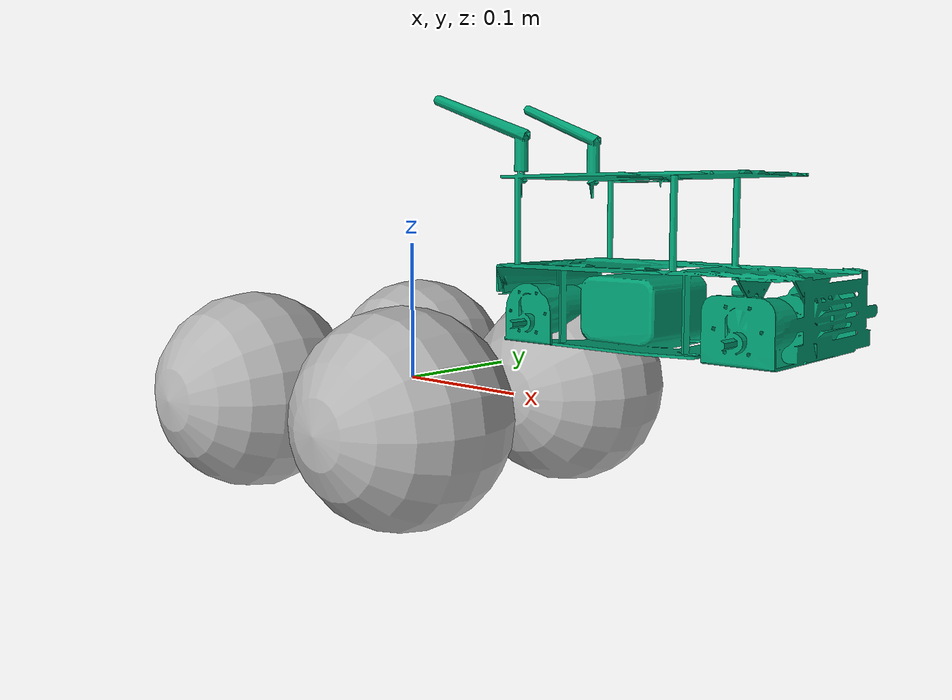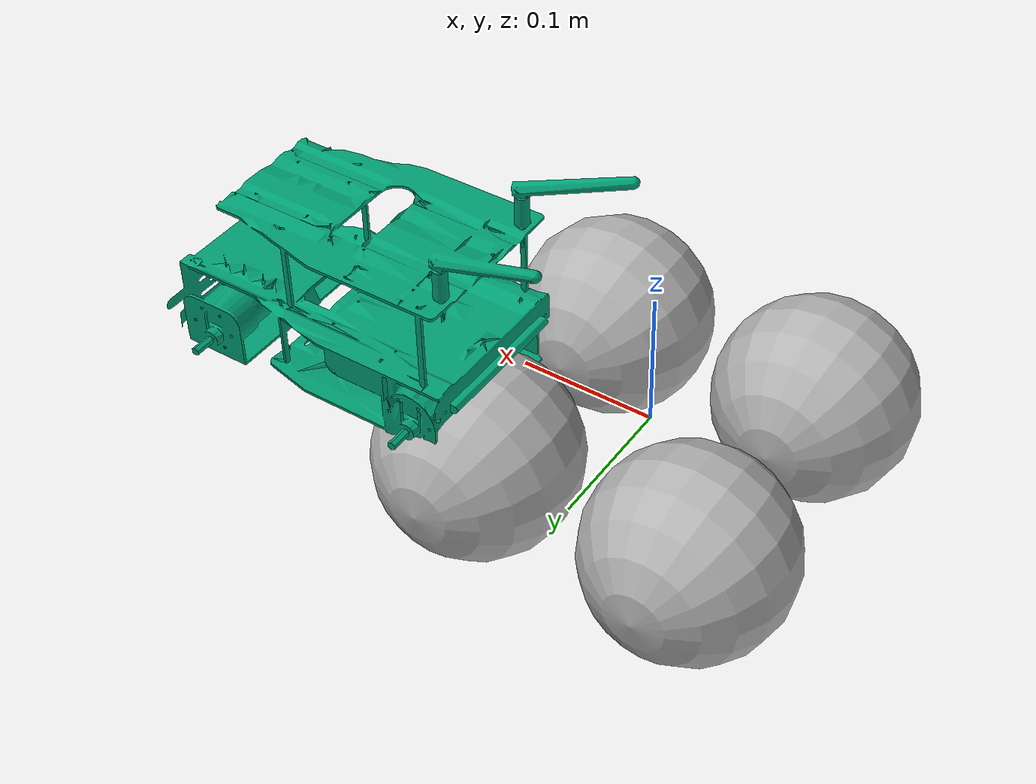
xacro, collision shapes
<?xml version="1.0"?>

<robot name="omnimate" xmlns:xacro="http://ros.org/wiki/xacro">

    <xacro:include filename="$(find omnimate_description)/urdf/omnimate_drive.urdf.xacro" />

    <!-- Links -->

    <link name="base_footprint" />

    <link name="imu_link" />

    <link name="base_link">
        <inertial>
            <origin xyz="0.00498197982182523 5.70233829969297E-05 -0.0121008098068578" rpy="0 0 0" />
            <mass value="0.486218814966626" />
            <inertia
                ixx="0.00196277727666921"
                ixy="2.50447049446755E-07"
                ixz="0.000140534767811098"
                iyy="0.00457256033711368"
                iyz="2.68618064993882E-07"
                izz="0.00493927269870476" />
        </inertial>
        <visual>
            <origin xyz="0 0 0" rpy="0 0 0" />
            <geometry>
                <mesh filename="package://omnimate_description/meshes/base_link_X3.STL" />
            </geometry>
        </visual>
        <collision>
            <origin xyz="0 0 0" rpy="0 0 0" />
            <geometry>
                <mesh filename="package://omnimate_description/meshes/base_link_X3.STL" />
            </geometry>
        </collision>
    </link>

    <link name="front_right_wheel">
        <inertial>
            <origin xyz="1.9051E-06 -2.3183E-07 -0.00064079" rpy="0 0 0" />
            <mass value="0.051532" />
            <inertia ixx="1.4595E-05" ixy="-4.3975E-10" ixz="4.415E-10"
                iyy="1.4594E-05" iyz="-1.7476E-09" izz="2.4264E-05" />
        </inertial>
        <visual>
            <origin xyz="0 0 0" rpy="0 0 0" />
            <geometry>
                <mesh
                    filename="package://omnimate_description/meshes/wheels/front_right_wheel_X3.STL" />
            </geometry>
            <material name="">
                <color rgba="0.7 0.7 0.7 1" />
            </material>
        </visual>
        <collision>
            <origin xyz="0 0 0" rpy="0 0 0" />
            <geometry>
                <sphere radius="0.07162"/>
            </geometry>
        </collision>
    </link>

    <link name="front_left_wheel">
        <inertial>
            <origin xyz="2.3728E-06 -9.4228E-07 0.00064068" rpy="0 0 0" />
            <mass value="0.051543" />
            <inertia ixx="1.4597E-05" ixy="-4.7945E-10" ixz="-2.4786E-10"
                iyy="1.4598E-05" iyz="1.7972E-09" izz="2.4267E-05" />
        </inertial>
        <visual>
            <origin xyz="0 0 0" rpy="0 0 0" />
            <geometry>
                <mesh
                    filename="package://omnimate_description/meshes/wheels/front_left_wheel_X3.STL" />
            </geometry>
            <material name="">
                <color rgba="0.7 0.7 0.7 1" />
            </material>
        </visual>
        <collision>
            <origin xyz="0 0 0" rpy="0 0 0" />
            <geometry>
                <sphere radius="0.07162"/>
            </geometry>
        </collision>
    </link>

    <link name="back_right_wheel">
        <inertial>
            <origin xyz="-1.75924169923403E-06 1.28388821071107E-06 -0.000590549296238266"
                rpy="0 0 0" />
            <mass value="0.051540174053366" />
            <inertia ixx="1.45974152250002E-05" ixy="1.94850559178397E-10"
                ixz="-1.61846387282284E-09"
                iyy="1.4596501955693E-05" iyz="-6.27904057423818E-10" izz="2.42663091380451E-05" />
        </inertial>
        <visual>
            <origin xyz="0 0 0" rpy="0 0 0" />
            <geometry>
                <mesh
                    filename="package://omnimate_description/meshes/wheels/back_right_wheel_X3.STL" />
            </geometry>
            <material name="">
                <color rgba="0.7 0.7 0.7 1" />
            </material>
        </visual>
        <collision>
            <origin xyz="0 0 0" rpy="0 0 0" />
            <geometry>
                <sphere radius="0.07162"/>
            </geometry>
        </collision>
    </link>

    <link name="back_left_wheel">
        <inertial>
            <origin xyz="-4.01213085227115E-07 2.04910264598596E-06 0.000590775697051377"
                rpy="0 0 0" />
            <mass value="0.0515309299357028" />
            <inertia ixx="1.45942986129926E-05" ixy="-3.19787215398093E-10"
                ixz="1.74943062058915E-09"
                iyy="1.45948727598913E-05" iyz="1.61769812110049E-10" izz="2.4263683888153E-05" />
        </inertial>
        <visual>
            <origin xyz="0 0 0" rpy="0 0 0" />
            <geometry>
                <mesh
                    filename="package://omnimate_description/meshes/wheels/back_left_wheel_X3.STL" />
            </geometry>
            <material name="">
                <color rgba="0.7 0.7 0.7 1" />
            </material>
        </visual>
        <collision>
            <origin xyz="0 0 0" rpy="0 0 0" />
            <geometry>
                <sphere radius="0.07162"/>
            </geometry>
        </collision>
    </link>

    <!-- Joints -->

    <joint name="base_joint" type="fixed">
        <parent link="base_footprint" />
        <child link="base_link" />
        <origin xyz="0 0 0.033" rpy="0 0 0" />
    </joint>

    <joint name="base_imu" type="fixed">
        <parent link="base_link" />
        <child link="imu_link" />
        <origin xyz="-0.06 0.01 0.01" rpy="0 3.1415 1.5707" />
    </joint>

    <joint name="front_right_joint" type="continuous">
        <origin xyz="0.08 -0.0845 -0.0389" rpy="-1.5703 0 3.14159" />
        <parent link="base_link" />
        <child link="front_right_wheel" />
        <axis xyz="0 0 1" rpy="0 0 0" />
        <limit effort="100" velocity="1" />
    </joint>

    <joint name="front_left_joint" type="continuous">
        <origin xyz="0.08 0.084492 -0.0389" rpy="1.5703 0 0" />
        <parent link="base_link" />
        <child link="front_left_wheel" />
        <axis xyz="0 0 1" rpy="0 0 0" />
        <limit effort="100" velocity="1" />
    </joint>

    <joint name="back_right_joint" type="continuous">
        <origin xyz="-0.08 -0.0845 -0.03946" rpy="-1.57 0 3.14159" />
        <parent link="base_link" />
        <child link="back_right_wheel" />
        <axis xyz="0 0 1" rpy="0 0 0" />
        <limit effort="100" velocity="1" />
    </joint>

    <joint name="back_left_joint" type="continuous">
        <origin xyz="-0.08 0.084492 -0.03954" rpy="1.5703 0 0" />
        <parent link="base_link" />
        <child link="back_left_wheel" />
        <axis xyz="0 0 1" rpy="0 0 0" />
        <limit effort="100" velocity="1" />
    </joint>

    <!-- Add the omnidirectional controller-->
    <xacro:omni_drive_controller/>

</robot>
